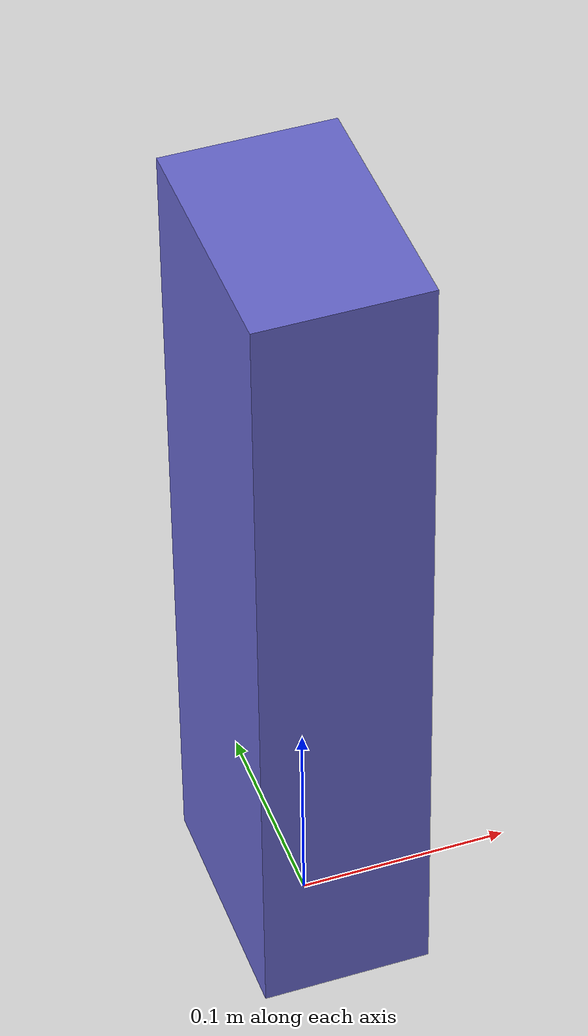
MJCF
<mujoco model="box_object">
  <worldbody>
    <body name="box" pos="0 0 0.2">
      <freejoint/>
      <inertial pos="0 0 0.2" mass="0.5" diaginertia="0.002 0.002 0.001"/>
      <geom name="box_geom"
            type="box"
            size="0.04 0.06 0.2"
            rgba="0.4 0.4 0.8 1"
            contype="1" conaffinity="1"/>
    </body>
  </worldbody>
</mujoco>
